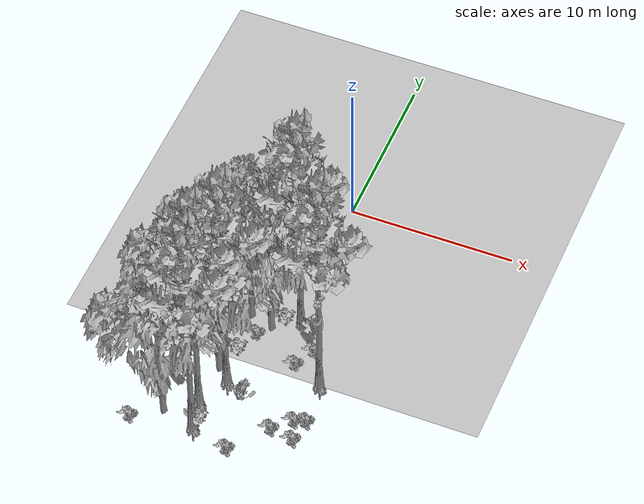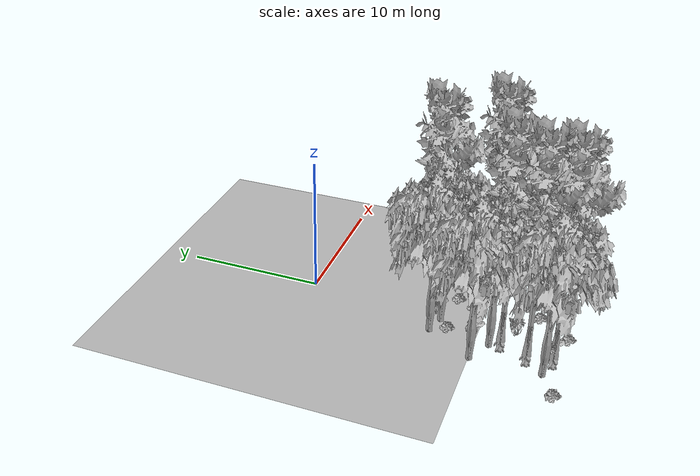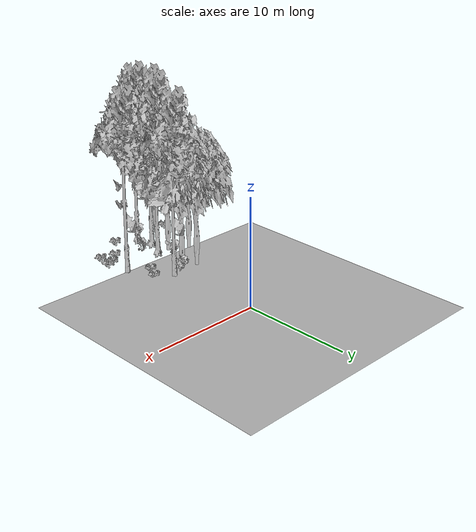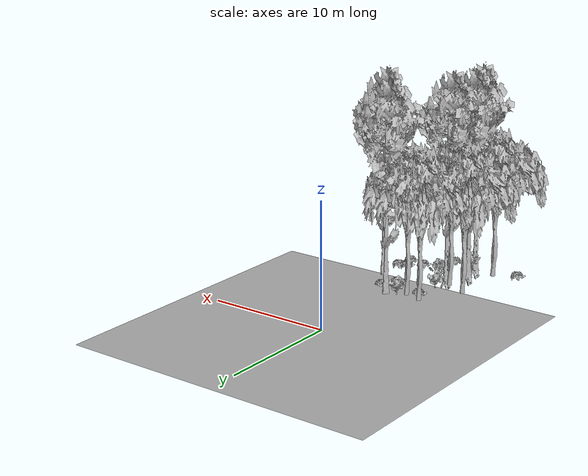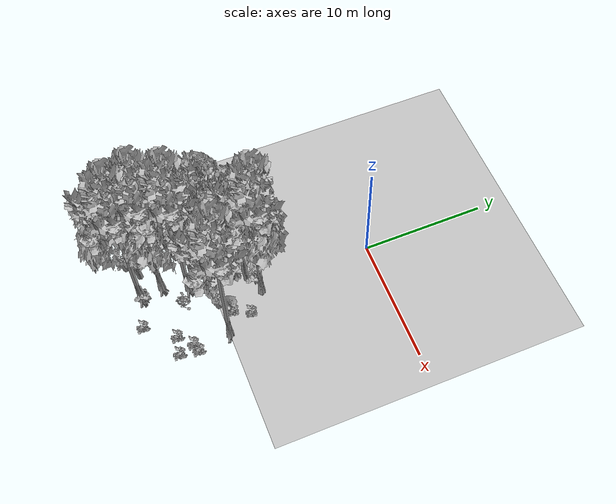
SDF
<sdf version="1.7">
 <world name="default">
  <model name="ground_plane">
   <static>1</static>
   <link name="link">
    <collision name="collision">
     <pose>-50 0 0 0 -0 0</pose>
     <geometry><plane><normal>0 0 1</normal><size>80 80</size></plane></geometry>
     <surface><contact><ode><min_depth>0.01</min_depth><max_vel>0</max_vel></ode></contact></surface>
    </collision>
    <visual name="grass">
     <cast_shadows>0</cast_shadows>
     <geometry>
      <mesh>
       <scale>0.46714285714285714 0.46714285714285714 0.1</scale>
       <uri>file://grass_plane/meshes/grass_plane.dae</uri>
      </mesh>
     </geometry>
    </visual>
   </link>
  </model>
  <model name="Tree 67">
   <static>1</static>
   <pose>-2.5029516655740025 -9.411934161109812 0 1.57079 -0 0</pose>
   <link name="link">
    <collision name="collision">
     <geometry><mesh><scale>3.5 5 3.5</scale><uri>model://tree_2/meshes/tree_2.obj</uri></mesh></geometry>
    </collision>
    <visual name="visual">
     <geometry><mesh><scale>3.5 5 3.5</scale><uri>model://tree_2/meshes/tree_2.obj</uri></mesh></geometry>
    </visual>
   </link>
  </model>
  <model name="Tree 143">
   <static>1</static>
   <pose>-4.456932996501806 -12.706029673911594 0 1.57079 -0 0</pose>
   <link name="link">
    <collision name="collision">
     <geometry><mesh><scale>3.5 5 3.5</scale><uri>model://tree_2/meshes/tree_2.obj</uri></mesh></geometry>
    </collision>
    <visual name="visual">
     <geometry><mesh><scale>3.5 5 3.5</scale><uri>model://tree_2/meshes/tree_2.obj</uri></mesh></geometry>
    </visual>
   </link>
  </model>
  <model name="Tree 238">
   <static>1</static>
   <pose>-2.3672821708774308 -17.932914205744854 0 1.57079 -0 0</pose>
   <link name="link">
    <collision name="collision">
     <geometry><mesh><scale>3.5 5 3.5</scale><uri>model://tree_9/meshes/tree_9.obj</uri></mesh></geometry>
    </collision>
    <visual name="visual">
     <geometry><mesh><scale>3.5 5 3.5</scale><uri>model://tree_9/meshes/tree_9.obj</uri></mesh></geometry>
    </visual>
   </link>
  </model>
  <model name="Tree 258">
   <static>1</static>
   <pose>3.0929557507241583 -12.604142111672516 0 1.57079 -0 0</pose>
   <link name="link">
    <collision name="collision">
     <geometry><mesh><scale>3.5 5 3.5</scale><uri>model://tree_9/meshes/tree_9.obj</uri></mesh></geometry>
    </collision>
    <visual name="visual">
     <geometry><mesh><scale>3.5 5 3.5</scale><uri>model://tree_9/meshes/tree_9.obj</uri></mesh></geometry>
    </visual>
   </link>
  </model>
  <model name="Tree 269">
   <static>1</static>
   <pose>0.5264952345300031 -9.124253212736669 0 1.57079 -0 0</pose>
   <link name="link">
    <collision name="collision">
     <geometry><mesh><scale>3.5 5 3.5</scale><uri>model://tree_9/meshes/tree_9.obj</uri></mesh></geometry>
    </collision>
    <visual name="visual">
     <geometry><mesh><scale>3.5 5 3.5</scale><uri>model://tree_9/meshes/tree_9.obj</uri></mesh></geometry>
    </visual>
   </link>
  </model>
  <model name="Tree 444">
   <static>1</static>
   <pose>-2.7225012390146546 -16.208229074643768 0 1.57079 -0 0</pose>
   <link name="link">
    <collision name="collision">
     <geometry><mesh><scale>3.5 5 3.5</scale><uri>model://tree_9/meshes/tree_9.obj</uri></mesh></geometry>
    </collision>
    <visual name="visual">
     <geometry><mesh><scale>3.5 5 3.5</scale><uri>model://tree_9/meshes/tree_9.obj</uri></mesh></geometry>
    </visual>
   </link>
  </model>
  <model name="Tree 475">
   <static>1</static>
   <pose>-2.695670679853265 -13.636910095750352 0 1.57079 -0 0</pose>
   <link name="link">
    <collision name="collision">
     <geometry><mesh><scale>3.5 5 3.5</scale><uri>model://tree_2/meshes/tree_2.obj</uri></mesh></geometry>
    </collision>
    <visual name="visual">
     <geometry><mesh><scale>3.5 5 3.5</scale><uri>model://tree_2/meshes/tree_2.obj</uri></mesh></geometry>
    </visual>
   </link>
  </model>
  <model name="Tree 562">
   <static>1</static>
   <pose>-1.8570736545860882 -14.278196910821848 0 1.57079 -0 0</pose>
   <link name="link">
    <collision name="collision">
     <geometry><mesh><scale>3.5 5 3.5</scale><uri>model://tree_9/meshes/tree_9.obj</uri></mesh></geometry>
    </collision>
    <visual name="visual">
     <geometry><mesh><scale>3.5 5 3.5</scale><uri>model://tree_9/meshes/tree_9.obj</uri></mesh></geometry>
    </visual>
   </link>
  </model>
  <model name="Tree 569">
   <static>1</static>
   <pose>-4.418865341237499 -17.52199613804928 0 1.57079 -0 0</pose>
   <link name="link">
    <collision name="collision">
     <geometry><mesh><scale>3.5 5 3.5</scale><uri>model://tree_2/meshes/tree_2.obj</uri></mesh></geometry>
    </collision>
    <visual name="visual">
     <geometry><mesh><scale>3.5 5 3.5</scale><uri>model://tree_2/meshes/tree_2.obj</uri></mesh></geometry>
    </visual>
   </link>
  </model>
  <model name="Tree 585">
   <static>1</static>
   <pose>-1.0964859651856358 -9.847277912348325 0 1.57079 -0 0</pose>
   <link name="link">
    <collision name="collision">
     <geometry><mesh><scale>3.5 5 3.5</scale><uri>model://tree_2/meshes/tree_2.obj</uri></mesh></geometry>
    </collision>
    <visual name="visual">
     <geometry><mesh><scale>3.5 5 3.5</scale><uri>model://tree_2/meshes/tree_2.obj</uri></mesh></geometry>
    </visual>
   </link>
  </model>
  <model name="Bush 24">
   <static>1</static>
   <pose>-0.6787563303871735 -15.101422464502097 0 1.57079 -0 0</pose>
   <link name="link">
    <collision name="collision">
     <geometry><mesh><scale>2 2 2</scale><uri>model://bush_4/meshes/bush_4.obj</uri></mesh></geometry>
     <surface><contact><collide_without_contact>false</collide_without_contact></contact></surface>
    </collision>
    <visual name="visual">
     <geometry><mesh><scale>2 2 2</scale><uri>model://bush_4/meshes/bush_4.obj</uri></mesh></geometry>
    </visual>
   </link>
  </model>
  <model name="Bush 30">
   <static>1</static>
   <pose>2.6219153819570096 -15.424337080878523 0 1.57079 -0 0</pose>
   <link name="link">
    <collision name="collision">
     <geometry><mesh><scale>2 2 2</scale><uri>model://bush_2/meshes/bush_2.obj</uri></mesh></geometry>
     <surface><contact><collide_without_contact>false</collide_without_contact></contact></surface>
    </collision>
    <visual name="visual">
     <geometry><mesh><scale>2 2 2</scale><uri>model://bush_2/meshes/bush_2.obj</uri></mesh></geometry>
    </visual>
   </link>
  </model>
  <model name="Bush 46">
   <static>1</static>
   <pose>-0.14180718155733274 -18.570661572756073 0 1.57079 -0 0</pose>
   <link name="link">
    <collision name="collision">
     <geometry><mesh><scale>2 2 2</scale><uri>model://bush_2/meshes/bush_2.obj</uri></mesh></geometry>
     <surface><contact><collide_without_contact>false</collide_without_contact></contact></surface>
    </collision>
    <visual name="visual">
     <geometry><mesh><scale>2 2 2</scale><uri>model://bush_2/meshes/bush_2.obj</uri></mesh></geometry>
    </visual>
   </link>
  </model>
  <model name="Bush 91">
   <static>1</static>
   <pose>-2.1149462702675237 -17.71499891889264 0 1.57079 -0 0</pose>
   <link name="link">
    <collision name="collision">
     <geometry><mesh><scale>2 2 2</scale><uri>model://bush_0/meshes/bush_0.obj</uri></mesh></geometry>
     <surface><contact><collide_without_contact>false</collide_without_contact></contact></surface>
    </collision>
    <visual name="visual">
     <geometry><mesh><scale>2 2 2</scale><uri>model://bush_0/meshes/bush_0.obj</uri></mesh></geometry>
    </visual>
   </link>
  </model>
  <model name="Bush 108">
   <static>1</static>
   <pose>1.604922806367746 -16.39089264568024 0 1.57079 -0 0</pose>
   <link name="link">
    <collision name="collision">
     <geometry><mesh><scale>2 2 2</scale><uri>model://bush_2/meshes/bush_2.obj</uri></mesh></geometry>
     <surface><contact><collide_without_contact>false</collide_without_contact></contact></surface>
    </collision>
    <visual name="visual">
     <geometry><mesh><scale>2 2 2</scale><uri>model://bush_2/meshes/bush_2.obj</uri></mesh></geometry>
    </visual>
   </link>
  </model>
  <model name="Bush 278">
   <static>1</static>
   <pose>3.0294961147758386 -16.642671775327837 0 1.57079 -0 0</pose>
   <link name="link">
    <collision name="collision">
     <geometry><mesh><scale>2 2 2</scale><uri>model://bush_2/meshes/bush_2.obj</uri></mesh></geometry>
     <surface><contact><collide_without_contact>false</collide_without_contact></contact></surface>
    </collision>
    <visual name="visual">
     <geometry><mesh><scale>2 2 2</scale><uri>model://bush_2/meshes/bush_2.obj</uri></mesh></geometry>
    </visual>
   </link>
  </model>
  <model name="Bush 384">
   <static>1</static>
   <pose>-2.038005932806769 -12.331808958065011 0 1.57079 -0 0</pose>
   <link name="link">
    <collision name="collision">
     <geometry><mesh><scale>2 2 2</scale><uri>model://bush_0/meshes/bush_0.obj</uri></mesh></geometry>
     <surface><contact><collide_without_contact>false</collide_without_contact></contact></surface>
    </collision>
    <visual name="visual">
     <geometry><mesh><scale>2 2 2</scale><uri>model://bush_0/meshes/bush_0.obj</uri></mesh></geometry>
    </visual>
   </link>
  </model>
  <model name="Bush 385">
   <static>1</static>
   <pose>3.276286539402335 -15.219410360988384 0 1.57079 -0 0</pose>
   <link name="link">
    <collision name="collision">
     <geometry><mesh><scale>2 2 2</scale><uri>model://bush_2/meshes/bush_2.obj</uri></mesh></geometry>
     <surface><contact><collide_without_contact>false</collide_without_contact></contact></surface>
    </collision>
    <visual name="visual">
     <geometry><mesh><scale>2 2 2</scale><uri>model://bush_2/meshes/bush_2.obj</uri></mesh></geometry>
    </visual>
   </link>
  </model>
  <model name="Bush 421">
   <static>1</static>
   <pose>-1.7318002099351375 -10.509514424287516 0 1.57079 -0 0</pose>
   <link name="link">
    <collision name="collision">
     <geometry><mesh><scale>2 2 2</scale><uri>model://bush_2/meshes/bush_2.obj</uri></mesh></geometry>
     <surface><contact><collide_without_contact>false</collide_without_contact></contact></surface>
    </collision>
    <visual name="visual">
     <geometry><mesh><scale>2 2 2</scale><uri>model://bush_2/meshes/bush_2.obj</uri></mesh></geometry>
    </visual>
   </link>
  </model>
  <model name="Bush 570">
   <static>1</static>
   <pose>-6.0822417780971705 -18.501206177888385 0 1.57079 -0 0</pose>
   <link name="link">
    <collision name="collision">
     <geometry><mesh><scale>2 2 2</scale><uri>model://bush_2/meshes/bush_2.obj</uri></mesh></geometry>
     <surface><contact><collide_without_contact>false</collide_without_contact></contact></surface>
    </collision>
    <visual name="visual">
     <geometry><mesh><scale>2 2 2</scale><uri>model://bush_2/meshes/bush_2.obj</uri></mesh></geometry>
    </visual>
   </link>
  </model>
  <model name="Bush 600">
   <static>1</static>
   <pose>1.7887002419048201 -10.469457400754933 0 1.57079 -0 0</pose>
   <link name="link">
    <collision name="collision">
     <geometry><mesh><scale>2 2 2</scale><uri>model://bush_2/meshes/bush_2.obj</uri></mesh></geometry>
     <surface><contact><collide_without_contact>false</collide_without_contact></contact></surface>
    </collision>
    <visual name="visual">
     <geometry><mesh><scale>2 2 2</scale><uri>model://bush_2/meshes/bush_2.obj</uri></mesh></geometry>
    </visual>
   </link>
  </model>
  <model name="Bush 603">
   <static>1</static>
   <pose>1.1504983746349566 -11.730572946551796 0 1.57079 -0 0</pose>
   <link name="link">
    <collision name="collision">
     <geometry><mesh><scale>2 2 2</scale><uri>model://bush_2/meshes/bush_2.obj</uri></mesh></geometry>
     <surface><contact><collide_without_contact>false</collide_without_contact></contact></surface>
    </collision>
    <visual name="visual">
     <geometry><mesh><scale>2 2 2</scale><uri>model://bush_2/meshes/bush_2.obj</uri></mesh></geometry>
    </visual>
   </link>
  </model>
  <model name="Bush 611">
   <static>1</static>
   <pose>-0.3584174828991209 -9.329500175404164 0 1.57079 -0 0</pose>
   <link name="link">
    <collision name="collision">
     <geometry><mesh><scale>2 2 2</scale><uri>model://bush_0/meshes/bush_0.obj</uri></mesh></geometry>
     <surface><contact><collide_without_contact>false</collide_without_contact></contact></surface>
    </collision>
    <visual name="visual">
     <geometry><mesh><scale>2 2 2</scale><uri>model://bush_0/meshes/bush_0.obj</uri></mesh></geometry>
    </visual>
   </link>
  </model>
 </world>
</sdf>
